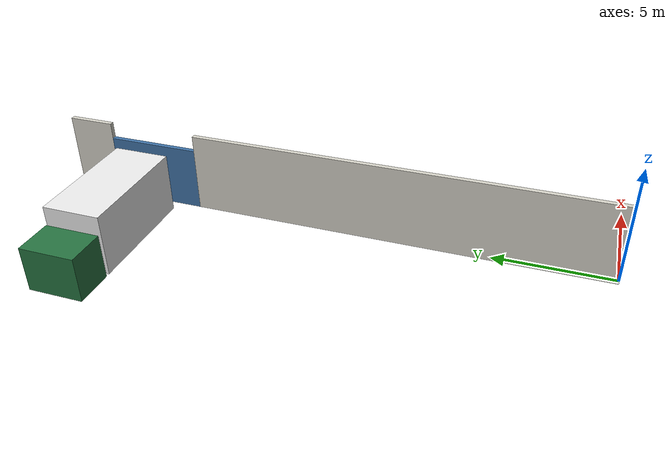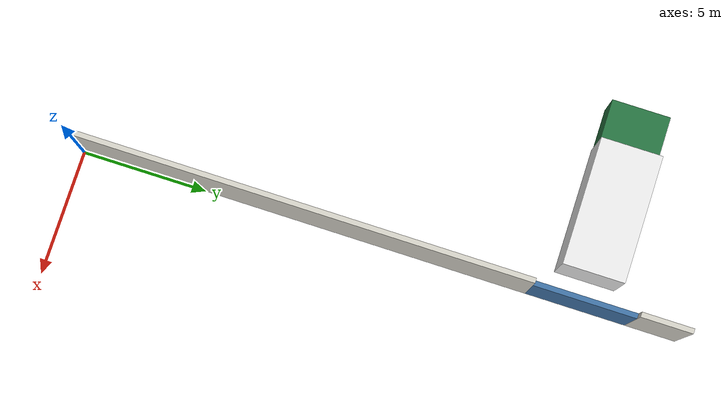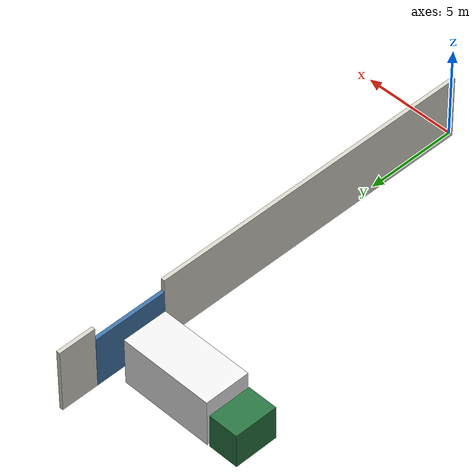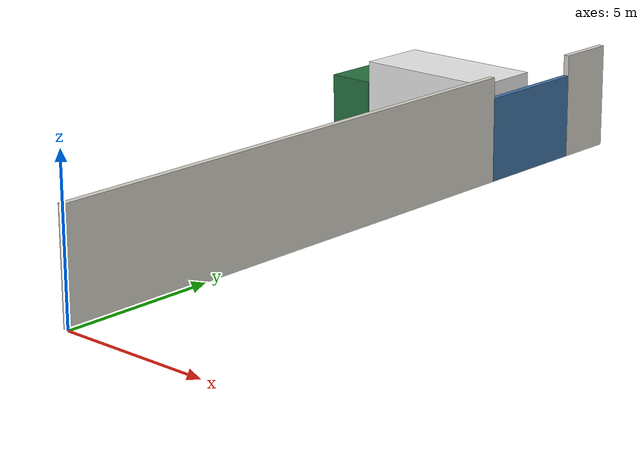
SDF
<sdf version="1.9">
 <world name="uco_warehouse">
  <model name="wall_west_0">
   <static>true</static>
   <pose>-0.100 9.000 1.750 0 0 0.0000</pose>
   <link name="link">
    <collision name="c"><geometry><box><size>0.200 18.000 3.500</size></box></geometry></collision>
    <visual name="v">
     <geometry><box><size>0.200 18.000 3.500</size></box></geometry>
     <material><ambient>0.83 0.82 0.78 1</ambient><diffuse>0.83 0.82 0.78 1</diffuse></material>
    </visual>
   </link>
  </model>
  <model name="wall_west_1">
   <static>true</static>
   <pose>-0.100 23.000 1.750 0 0 0.0000</pose>
   <link name="link">
    <collision name="c"><geometry><box><size>0.200 2.000 3.500</size></box></geometry></collision>
    <visual name="v">
     <geometry><box><size>0.200 2.000 3.500</size></box></geometry>
     <material><ambient>0.83 0.82 0.78 1</ambient><diffuse>0.83 0.82 0.78 1</diffuse></material>
    </visual>
   </link>
  </model>
  <model name="dock_door">
   <static>true</static>
   <pose>-0.100 20.000 1.400 0 0 0.0000</pose>
   <link name="link">
    <collision name="c"><geometry><box><size>0.200 4.000 2.800</size></box></geometry></collision>
    <visual name="v">
     <geometry><box><size>0.200 4.000 2.800</size></box></geometry>
     <material><ambient>0.25 0.45 0.65 1</ambient><diffuse>0.25 0.45 0.65 1</diffuse></material>
    </visual>
   </link>
  </model>
  <model name="delivery_truck">
   <static>true</static>
   <pose>-4.60 20.00 0 0 0 3.14159</pose>
   <link name="link">
    <visual name="cargo">
     <pose>-1.0 0 1.6 0 0 0</pose>
     <geometry><box><size>5.000 2.400 2.600</size></box></geometry>
     <material><ambient>0.920 0.920 0.920 1</ambient><diffuse>0.920 0.920 0.920 1</diffuse></material>
    </visual>
    <visual name="cab">
     <pose>2.4 0 1.2 0 0 0</pose>
     <geometry><box><size>1.600 2.300 1.900</size></box></geometry>
     <material><ambient>0.150 0.450 0.250 1</ambient><diffuse>0.150 0.450 0.250 1</diffuse></material>
    </visual>
    <collision name="c">
     <pose>0 0 1.3 0 0 0</pose>
     <geometry><box><size>6.600 2.400 2.600</size></box></geometry>
    </collision>
   </link>
  </model>
 </world>
</sdf>
